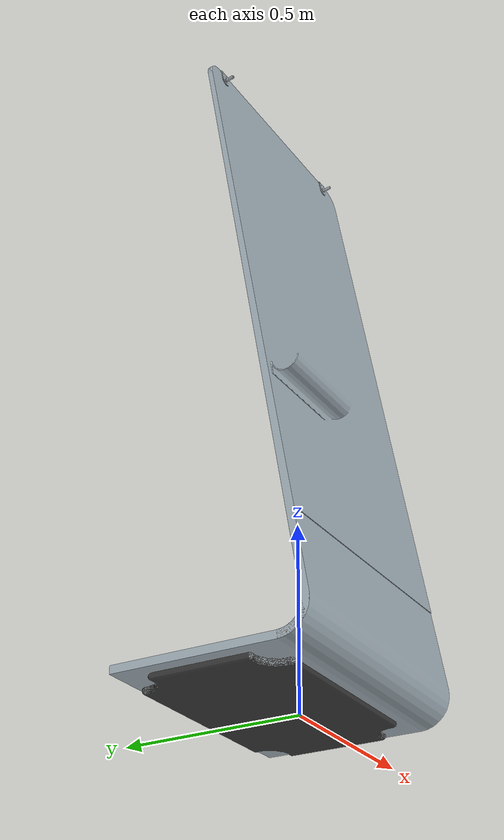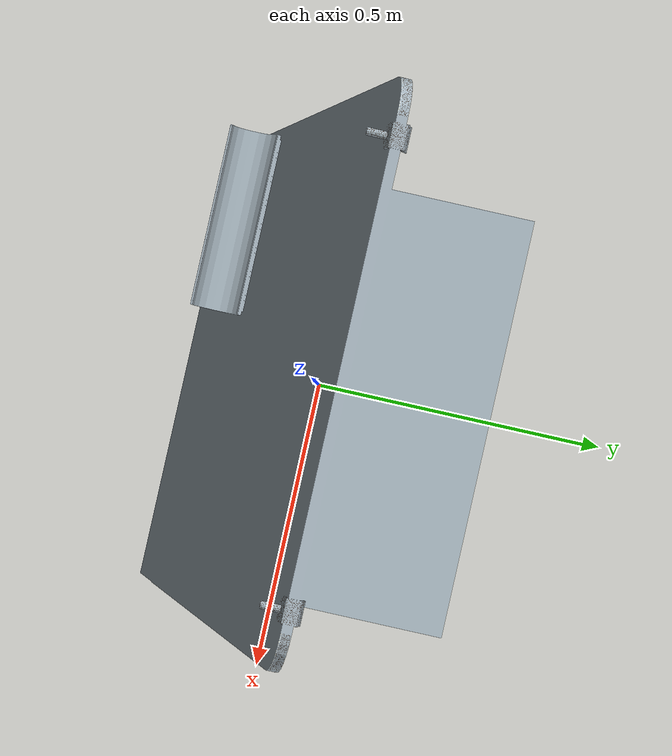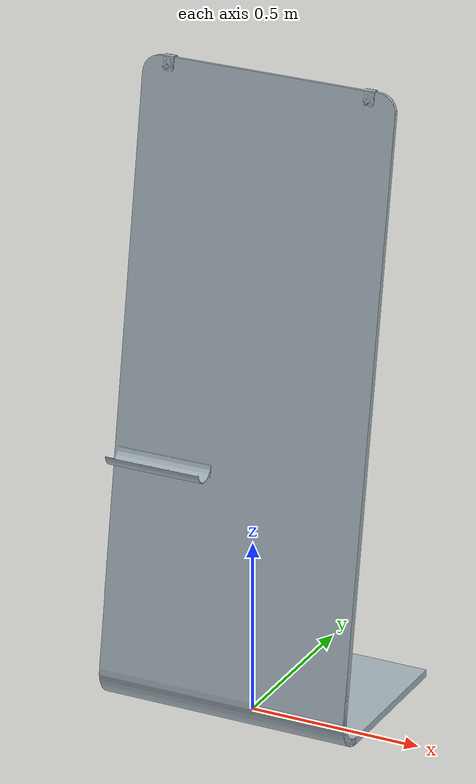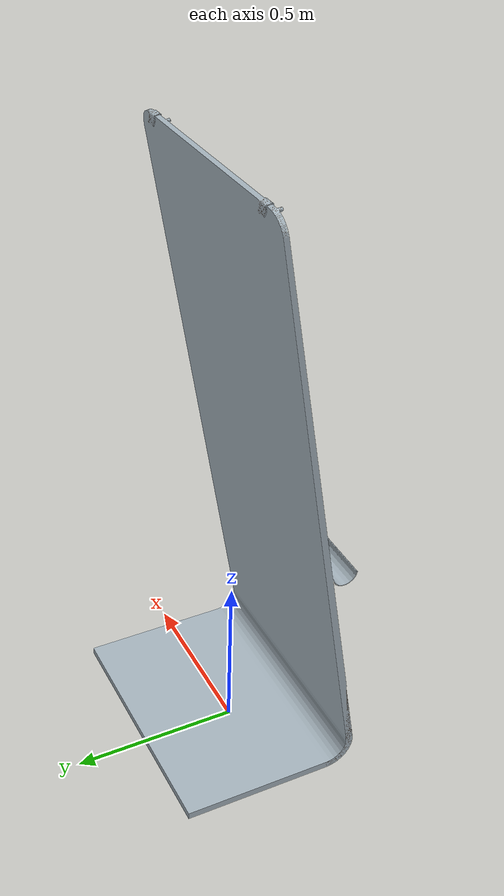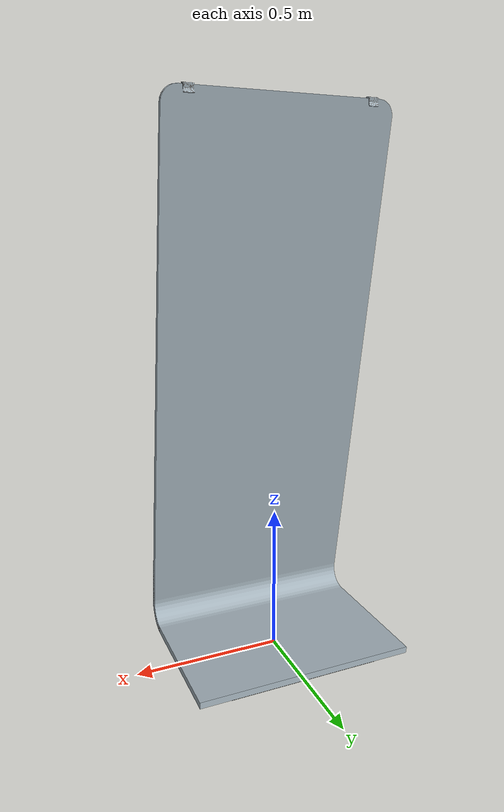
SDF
<?xml version="1.0" ?>
<sdf version="1.6">
  <model name="flipchart">
    <static>true</static>
    <link name="link">
      <collision name="collision">
        <geometry>
          <mesh>
            <uri>model://flipchart/meshes/flipchart.dae</uri>
          </mesh>
        </geometry>
      </collision>
      <visual name="visual">
         <geometry>
           <mesh>
             <uri>model://flipchart/meshes/flipchart.dae</uri>
           </mesh>
         </geometry>
        <material>
          <script>
            <uri>model://flipchart/materials/scripts</uri>
            <uri>model://flipchart/materials/textures</uri>
            <name>FlipChart/Diffuse</name>
          </script>
        </material>
       </visual>
    </link>
  </model>
</sdf>
